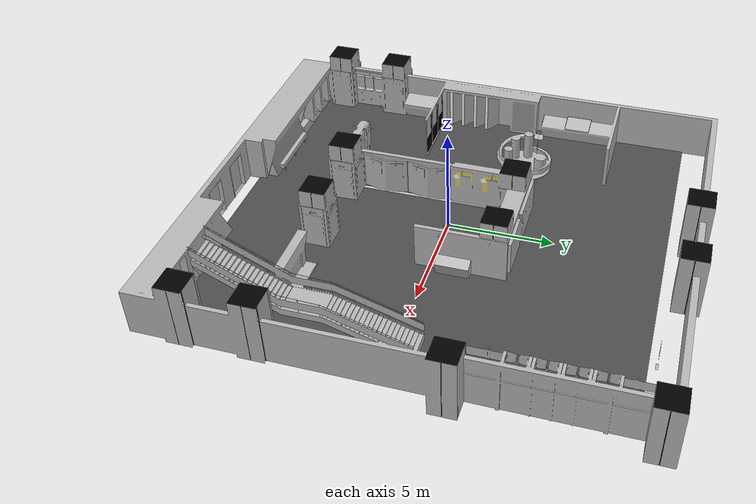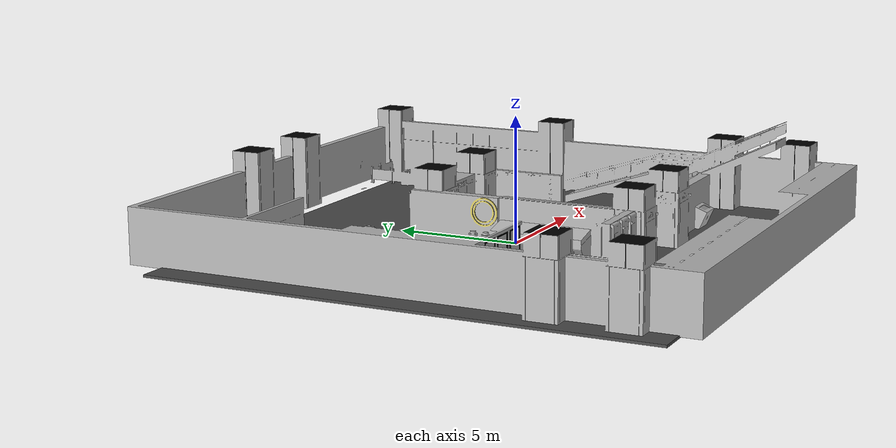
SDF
<sdf version="1.6">
 <world name="default">
  <light name="sun" type="directional">
   <pose>0 0 10 0 -0 0</pose>
   <diffuse>0.8 0.8 0.8 1</diffuse>
   <specular>0.1 0.1 0.1 1</specular>
   <attenuation>
    <range>1000</range>
    <constant>0.9</constant>
    <linear>0.01</linear>
    <quadratic>0.001</quadratic>
   </attenuation>
   <direction>-0.5 0.5 -1</direction>
  </light>
  <gravity>0 0 -9.8</gravity>
  <magnetic_field>6e-06 2.3e-05 -4.2e-05</magnetic_field>
  <atmosphere type="adiabatic"/>
  <physics name="default_physics" default="0" type="ode">
   <max_step_size>0.001</max_step_size>
   <real_time_factor>1</real_time_factor>
   <real_time_update_rate>1000</real_time_update_rate>
  </physics>
  <scene><ambient>0.4 0.4 0.4 1</ambient><background>0.7 0.7 0.7 1</background><shadows>1</shadows></scene>
  <spherical_coordinates>
   <surface_model>EARTH_WGS84</surface_model>
   <latitude_deg>0</latitude_deg>
   <longitude_deg>0</longitude_deg>
   <elevation>0</elevation>
   <heading_deg>0</heading_deg>
  </spherical_coordinates>
  <model name="iscas_museum">
   <link name="link">
    <inertial><mass>15</mass></inertial>
    <collision name="collision">
     <pose>0 0 0 0 0 -1.57</pose>
     <geometry><mesh><uri>model://iscas_museum/meshes/ISCAS_museum.dae</uri><scale>1 1 1</scale></mesh></geometry>
    </collision>
    <visual name="visual">
     <pose>0 0 0 0 0 -1.57</pose>
     <geometry><mesh><uri>model://iscas_museum/meshes/ISCAS_museum.dae</uri><scale>1 1 1</scale></mesh></geometry>
    </visual>
   </link>
   <static>1</static>
   <pose>0.23594 0.008461 0 0 -0 0</pose>
  </model>
  <model name="asphalt_plane_0">
   <static>1</static>
   <link name="link">
    <collision name="collision"><geometry><box><size>20 20 0.1</size></box></geometry></collision>
    <visual name="visual">
     <cast_shadows>0</cast_shadows>
     <geometry><box><size>20 20 0.1</size></box></geometry>
     <material>
      <script>
       <uri>model://asphalt_plane/materials/scripts</uri>
       <uri>model://asphalt_plane/materials/textures</uri>
       <name>vrc/asphalt</name>
      </script>
     </material>
    </visual>
   </link>
   <pose>-0.151286 0.018748 0 0 -0 0</pose>
  </model>
 </world>
</sdf>
